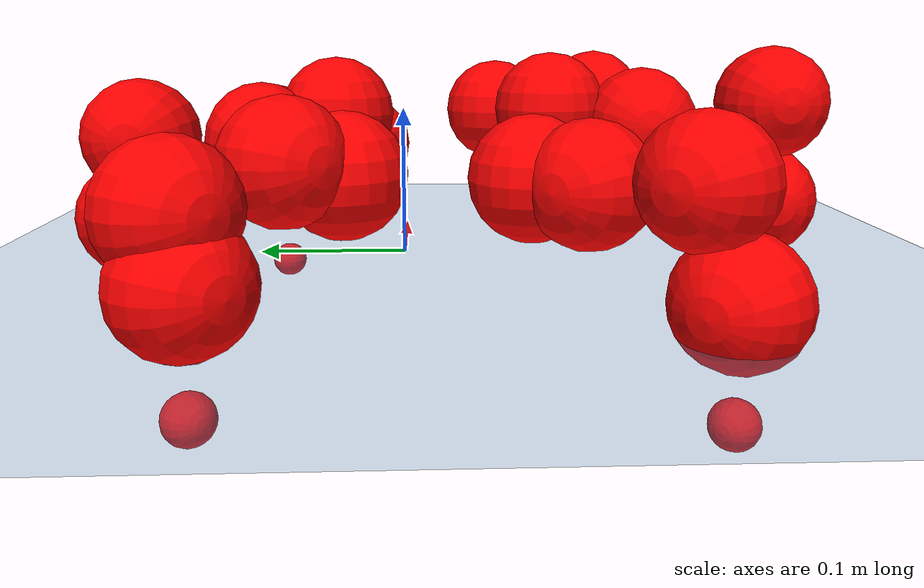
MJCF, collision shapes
<mujoco model="Golem">
  <compiler angle="radian" assetdir="assets" balanceinertia="true" inertiafromgeom="false"/>

  <option timestep="0.005" density="1.2" viscosity="2e-05"/>

  <size nkey="1"/>

  <visual>
    <quality shadowsize="8192"/>
    <map shadowclip="0.5"/>
  </visual>

  <default>
    <default class="/">
      <joint armature="0.01" damping="0.01" frictionloss="0.01"/>
      <geom contype="0" conaffinity="0" group="1" solref="-1000 -80"/>
      <site size="0.01 0.005 0.005" group="5"/>
      <general forcelimited="true" biastype="affine" gainprm="25" biasprm="0 -25 -0.5"/>
      <default class="visual">
        <geom type="mesh" group="2"/>
      </default>
      <default class="collision">
        <geom group="3"/>
      </default>
      <default class="foot">
        <geom size="0.01 0 0" condim="6" group="4" priority="1" solimp="0.015 1 0.01"/>
      </default>
      <default class="reward_collision_sphere">
        <geom group="5" rgba="1 0 0 1"/>
      </default>
    </default>
  </default>

  <asset>
    <texture type="skybox" colorspace="auto" name="//unnamed_texture_0" builtin="gradient" rgb1="0.95 0.95 0.95" rgb2="0.95 0.95 0.95" width="100" height="600"/>
    <texture type="2d" colorspace="auto" name="texplane" builtin="checker" rgb1="0.345 0.575 0.748" rgb2="0.345 0.575 0.748" markrgb="1 1 1" width="512" height="512"/>
    <material name="MatPlane" class="/" texture="texplane" texuniform="true" texrepeat="2 2" specular="0.9"/>
    <mesh name="body" class="/" file="body.stl" scale="0.001 0.001 0.001"/>
    <mesh name="coxa" class="/" file="coxa.stl" scale="0.001 0.001 0.001"/>
    <mesh name="femur" class="/" file="femur.stl" scale="0.001 0.001 0.001"/>
    <mesh name="tibia" class="/" file="tibia.stl" scale="0.001 0.001 0.001"/>
    <mesh name="tarsus" class="/" file="tarsus.stl" scale="0.001 0.001 0.001"/>
  </asset>

  <worldbody>
    <geom name="floor" class="/" size="100 100 0.125" type="plane" group="0" material="MatPlane"/>
    <light name="toplight_shadow" class="/" pos="0 0 5" dir="0.0990148 0.0990148 -0.990148" type="directional" ambient="0.04 0.04 0.04" diffuse="0.55 0.55 0.55" specular="0.12 0.12 0.12"/>
    <light name="toplight_fill" class="/" pos="0 0 5" dir="0.0990148 0.0990148 -0.990148" type="directional" castshadow="false" ambient="0.04 0.04 0.04" diffuse="0.3 0.3 0.3" specular="0.08 0.08 0.08"/>
    <body name="trunk" pos="-0.0107439 -0.0173849 -0.0132509" quat="0.999998 -0.00206561 -4.91024e-05 -0.000231501">
      <inertial pos="0.011698 -0.0037598 0.0189793" quat="0.99958 -0.0208531 0.00219166 -0.0200134" mass="1.92196" diaginertia="0.000841702 0.00107156 0.075449"/>
      <joint name="//unnamed_joint_0" type="free"/>
      <geom name="//unnamed_geom_1" class="/" pos="0 0 0.0961767" quat="1 0 0 0" type="mesh" rgba="0.9 0.9 0.9 1" mesh="body"/>
      <site name="imu" class="/" pos="0.112855 0.0694381 0.182099" size="0.00932975"/>
      <camera name="track" class="/" pos="0 -1.35517 0" quat="0.707107 0.707107 0 0" mode="trackcom"/>
      <camera name="ego_camera" class="/" pos="0.0804153 0 0.150276" quat="-0.5 -0.5 0.5 0.5"/>
      <body name="coxa_RR" pos="-0.115645 -0.07238 0.0822063" quat="0.388204 0.00482687 -0.00316873 -0.921555">
        <inertial pos="0.00420637 0.0187079 -0.0182405" quat="0.998083 -0.0467756 0.023917 -0.032706" mass="0.136827" diaginertia="0.000994791 0.00169918 0.0767405"/>
        <joint name="coxa_joint_RR" class="/" pos="0 0 0" axis="0.0102114 -0.0249294 -0.999637" range="-3.44338 3.10159" armature="0.00820124" damping="0" frictionloss="0.012642"/>
        <geom name="//unnamed_geom_2" class="/" type="mesh" rgba="0.2 0.2 0.2 1" mesh="coxa"/>
        <geom name="//unnamed_geom_3" class="reward_collision_sphere" size="0.037319" pos="-0.0185574 0 0"/>
        <body name="femur_RR" pos="0.0182389 0.00491625 -0.000291341" quat="0.502524 -0.497381 0.494667 0.505357">
          <inertial pos="0.0153077 0.00237509 0.00854556" quat="0.999986 -0.00214697 0.00127421 0.00464074" mass="0.154007" diaginertia="0.000855877 0.00133035 0.0717853"/>
          <joint name="femur_joint_RR" class="/" pos="0 0 0" axis="0.000813087 -0.023901 -0.999714" range="-2.85917 2.87933" armature="0.0168353" damping="0" frictionloss="0.0100652"/>
          <geom name="//unnamed_geom_4" class="/" type="mesh" rgba="0.9 0.9 0.9 1" mesh="femur"/>
          <geom name="//unnamed_geom_5" class="reward_collision_sphere" size="0.037319"/>
          <body name="tibia_RR" pos="-0.0102579 -0.0721118 -0.00302213" quat="1.53063e-05 1 -0.000187565 0.00030279">
            <inertial pos="-0.0122962 0.00194766 -0.00842888" quat="0.997973 -0.0281809 -0.00736006 0.0565735" mass="0.163424" diaginertia="0.000804026 0.00097195 0.0491536"/>
            <joint name="tibia_joint_RR" class="/" pos="0 0 0" axis="0.0632881 0.0381723 0.997265" stiffness="0.0572596" range="-2.90148 3.53805" armature="0.0133133" damping="0" frictionloss="0.0059364"/>
            <geom name="//unnamed_geom_6" class="/" type="mesh" rgba="0.2 0.2 0.2 1" mesh="tibia"/>
            <geom name="//unnamed_geom_7" class="reward_collision_sphere" size="0.037319"/>
            <body name="tarsus_RR" pos="0.0606403 0.0173067 -0.00586832" quat="0.999995 -0.00292893 -0.000102866 -0.00124112">
              <inertial pos="0.021535 -0.0198725 0.0162736" quat="0.455517 0.522406 0.487766 0.530737" mass="0.137648" diaginertia="0.000821491 0.000888164 0.05812"/>
              <joint name="tarsus_joint_RR" class="/" pos="0 0 0" axis="0.0392204 -0.049294 0.998014" stiffness="0.03465" range="-3.51017 3.07852" armature="0.00439679" damping="0.0666434" frictionloss="0.00355354"/>
              <geom name="//unnamed_geom_8" class="/" type="mesh" rgba="0.9 0.9 0.9 1" mesh="tarsus"/>
              <geom name="foot_1" class="foot" size="0.00545791" pos="0.0692809 0 0" quat="0 -0.707107 0 0.707107"/>
              <geom name="//unnamed_geom_10" class="reward_collision_sphere" size="0.037319"/>
              <geom name="//unnamed_geom_11" class="reward_collision_sphere" size="0.0139946" pos="0.0664973 0 0"/>
              <site name="foot_1" class="foot" pos="0.0692809 0 0" quat="0 -0.707107 0 0.707107" size="0.00932975"/>
            </body>
          </body>
        </body>
      </body>
      <body name="coxa_RM" pos="0.00580606 -0.101599 0.113773" quat="0.706878 0.000766893 0.000325044 -0.707335">
        <inertial pos="0.00683617 -0.0117991 -0.00968725" quat="0.999736 0.0203441 -0.00875525 0.00606059" mass="0.169316" diaginertia="0.000799159 0.00134383 0.0681525"/>
        <joint name="coxa_joint_RM" class="/" pos="0 0 0" axis="-0.0542139 0.0148906 -0.998418" stiffness="0.0894025" range="-2.97397 3.32535" armature="0.0102548" damping="0.0110321" frictionloss="0.0184257"/>
        <geom name="//unnamed_geom_12" class="/" type="mesh" rgba="0.2 0.2 0.2 1" mesh="coxa"/>
        <geom name="//unnamed_geom_13" class="reward_collision_sphere" size="0.037319" pos="-0.0185574 0 0"/>
        <body name="femur_RM" pos="0.0411606 -0.0136501 -0.00971796" quat="0.501251 -0.502178 0.499317 0.497239">
          <inertial pos="-0.00137623 0.0127315 -0.015295" quat="0.99906 -0.0330607 -0.027214 -0.00681924" mass="0.187859" diaginertia="0.00119061 0.00173364 0.0857499"/>
          <joint name="femur_joint_RM" class="/" pos="0 0 0" axis="-0.020161 -0.0381637 -0.999068" range="-3.31607 3.38722" armature="0.01263" damping="0.0791393" frictionloss="0.0115578"/>
          <geom name="//unnamed_geom_14" class="/" type="mesh" rgba="0.9 0.9 0.9 1" mesh="femur"/>
          <geom name="//unnamed_geom_15" class="reward_collision_sphere" size="0.037319"/>
          <body name="tibia_RM" pos="-0.0136339 -0.0860004 -0.00772805" quat="0.000607434 1 0.000675927 -0.000196331">
            <inertial pos="0.0187114 0.0177564 -0.0102136" quat="0.995527 0.0846801 -0.0382917 0.0170139" mass="0.159651" diaginertia="0.000988641 0.0014776 0.0973889"/>
            <joint name="tibia_joint_RM" class="/" pos="0 0 0" axis="0.00846914 -0.00348656 0.999958" range="-3.24297 2.9006" armature="0.00297883" damping="0" frictionloss="0.00322855"/>
            <geom name="//unnamed_geom_16" class="/" type="mesh" rgba="0.2 0.2 0.2 1" mesh="tibia"/>
            <geom name="//unnamed_geom_17" class="reward_collision_sphere" size="0.037319"/>
            <body name="tarsus_RM" pos="0.067197 -0.00171765 -0.0089132" quat="0.99999 -0.00222307 0.00215087 0.00316213">
              <inertial pos="0.0429471 -0.0055961 0.00789293" quat="0.512825 0.474034 0.50137 0.510813" mass="0.135113" diaginertia="0.000645084 0.00128977 0.0649714"/>
              <joint name="tarsus_joint_RM" class="/" pos="0 0 0" axis="-0.00131478 0.0435658 0.99905" stiffness="0.0573457" range="-3.12573 3.22998" armature="0.0183397" damping="0.00445959" frictionloss="0.00630698"/>
              <geom name="//unnamed_geom_18" class="/" type="mesh" rgba="0.9 0.9 0.9 1" mesh="tarsus"/>
              <geom name="foot_2" class="foot" size="0.0147885" pos="0.0692809 0 0" quat="0 -0.707107 0 0.707107"/>
              <geom name="//unnamed_geom_20" class="reward_collision_sphere" size="0.037319"/>
              <geom name="//unnamed_geom_21" class="reward_collision_sphere" size="0.0139946" pos="0.0664973 0 0"/>
              <site name="foot_2" class="foot" pos="0.0692809 0 0" quat="0 -0.707107 0 0.707107" size="0.00932975"/>
            </body>
          </body>
        </body>
      </body>
      <body name="coxa_RF" pos="0.106746 -0.0652049 0.105524" quat="0.924225 -0.00045871 0.000287564 -0.381848">
        <inertial pos="-0.0165234 -0.00120136 0.00353963" quat="0.999413 -0.0256931 -0.0123911 0.0189478" mass="0.164282" diaginertia="0.000674767 0.00123952 0.0898749"/>
        <joint name="coxa_joint_RF" class="/" pos="0 0 0" axis="-0.00465279 0.0381488 -0.999261" stiffness="0.0217958" range="-2.86981 3.27118" armature="0.0155342" damping="0" frictionloss="0.0121343"/>
        <geom name="//unnamed_geom_22" class="/" type="mesh" rgba="0.2 0.2 0.2 1" mesh="coxa"/>
        <geom name="//unnamed_geom_23" class="reward_collision_sphere" size="0.037319" pos="-0.0185574 0 0"/>
        <body name="femur_RF" pos="0.0188041 -0.00843086 -0.00707016" quat="0.500273 -0.499885 0.498059 0.501776">
          <inertial pos="0.00505903 0.00771182 0.0156553" quat="0.998912 -0.0136065 0.00150153 -0.0445731" mass="0.208066" diaginertia="0.00112212 0.00117185 0.0746735"/>
          <joint name="femur_joint_RF" class="/" pos="0 0 0" axis="-0.00123712 -0.00631096 -0.999979" stiffness="0.0697006" range="-3.4735 3.19989" armature="0.00313677" damping="0.0700567" frictionloss="0.00444683"/>
          <geom name="//unnamed_geom_24" class="/" type="mesh" rgba="0.9 0.9 0.9 1" mesh="femur"/>
          <geom name="//unnamed_geom_25" class="reward_collision_sphere" size="0.037319"/>
          <body name="tibia_RF" pos="-0.0127392 -0.0636395 -0.0127901" quat="0.000237269 1 9.58622e-05 3.67946e-05">
            <inertial pos="-0.01035 -0.0138722 -0.00437572" quat="0.998898 0.0312762 0.0316362 -0.014969" mass="0.151324" diaginertia="0.000657308 0.001598 0.0593261"/>
            <joint name="tibia_joint_RF" class="/" pos="0 0 0" axis="0.0202464 0.0317868 0.99929" range="-3.26468 3.30403" armature="0.00464368" damping="0.0465691" frictionloss="0.0166977"/>
            <geom name="//unnamed_geom_26" class="/" type="mesh" rgba="0.2 0.2 0.2 1" mesh="tibia"/>
            <geom name="//unnamed_geom_27" class="reward_collision_sphere" size="0.037319"/>
            <body name="tarsus_RF" pos="0.0462934 -0.0177409 0.0102234" quat="0.999959 -0.000982643 -0.00445347 0.00782779">
              <inertial pos="0.0400689 0.0184212 0.00842022" quat="0.428861 0.553327 0.475959 0.532325" mass="0.207211" diaginertia="0.000752248 0.00189048 0.0795302"/>
              <joint name="tarsus_joint_RF" class="/" pos="0 0 0" axis="0.0739396 0.0117445 0.997194" stiffness="0.0690325" range="-3.50395 3.26589" armature="0.000767259" damping="0.0167491" frictionloss="0.0100951"/>
              <geom name="//unnamed_geom_28" class="/" type="mesh" rgba="0.9 0.9 0.9 1" mesh="tarsus"/>
              <geom name="foot_3" class="foot" size="0.0125471" pos="0.0692809 0 0" quat="0 -0.707107 0 0.707107"/>
              <geom name="//unnamed_geom_30" class="reward_collision_sphere" size="0.037319"/>
              <geom name="//unnamed_geom_31" class="reward_collision_sphere" size="0.0139946" pos="0.0664973 0 0"/>
              <site name="foot_3" class="foot" pos="0.0692809 0 0" quat="0 -0.707107 0 0.707107" size="0.00932975"/>
            </body>
          </body>
        </body>
      </body>
      <body name="coxa_LR" pos="-0.115429 0.062138 0.0848662" quat="0.385009 -0.00242383 0.0042808 0.9229">
        <inertial pos="0.0095377 0.0189087 -0.00929027" quat="0.996919 -0.00205706 -0.0560128 -0.0548777" mass="0.211774" diaginertia="0.0010159 0.00136478 0.0893315"/>
        <joint name="coxa_joint_LR" class="/" pos="0 0 0" axis="0.0424237 0.0418567 -0.998223" stiffness="0.0722595" range="-2.90674 2.77213" armature="0.0174666" damping="0" frictionloss="0.0126982"/>
        <geom name="//unnamed_geom_32" class="/" type="mesh" rgba="0.2 0.2 0.2 1" mesh="coxa"/>
        <geom name="//unnamed_geom_33" class="reward_collision_sphere" size="0.037319" pos="-0.0185574 0 0"/>
        <body name="femur_LR" pos="0.0173249 -0.00710327 0.0111626" quat="0.501672 -0.50399 0.494022 0.500262">
          <inertial pos="-0.00962153 -0.00309837 -0.0081832" quat="0.995837 0.0577647 0.024991 0.065941" mass="0.206482" diaginertia="0.000922369 0.00157735 0.0630243"/>
          <joint name="femur_joint_LR" class="/" pos="0 0 0" axis="-0.0577344 0.0191231 0.998149" stiffness="0.0805968" range="-3.52771 3.45351" armature="0.00387655" damping="0.0537787" frictionloss="0.0123754"/>
          <geom name="//unnamed_geom_34" class="/" type="mesh" rgba="0.9 0.9 0.9 1" mesh="femur"/>
          <geom name="//unnamed_geom_35" class="reward_collision_sphere" size="0.037319"/>
          <body name="tibia_LR" pos="0.0134978 -0.0792121 0.0138776" quat="0.00564004 0.99998 0.00269345 0.000632958">
            <inertial pos="0.00604414 0.0180686 -0.0138595" quat="0.997826 -0.053222 0.00807873 -0.0380241" mass="0.15347" diaginertia="0.000705829 0.00115495 0.0703298"/>
            <joint name="tibia_joint_LR" class="/" pos="0 0 0" axis="0.0173404 -0.0159515 -0.999722" range="-2.82366 2.88127" armature="0.0147789" damping="0.0904427" frictionloss="0.00302215"/>
            <geom name="//unnamed_geom_36" class="/" type="mesh" rgba="0.2 0.2 0.2 1" mesh="tibia"/>
            <geom name="//unnamed_geom_37" class="reward_collision_sphere" size="0.037319"/>
            <body name="tarsus_LR" pos="0.0362881 0.000884581 -0.0097031" quat="0.999965 -0.00249451 -0.000629328 0.00794532">
              <inertial pos="0.0380337 0.00710312 -0.000272893" quat="0.501923 0.553994 0.46543 0.473855" mass="0.150212" diaginertia="0.000688534 0.00127323 0.0577183"/>
              <joint name="tarsus_joint_LR" class="/" pos="0 0 0" axis="-0.00441533 0.028856 -0.999574" stiffness="0.0816552" range="-2.80204 3.06529" armature="0.00994702" damping="0.0567352" frictionloss="0.0174031"/>
              <geom name="//unnamed_geom_38" class="/" type="mesh" rgba="0.9 0.9 0.9 1" mesh="tarsus"/>
              <geom name="foot_4" class="foot" size="0.00809716" pos="0.0692809 0 0" quat="0.707107 0 -0.707107 0"/>
              <geom name="//unnamed_geom_40" class="reward_collision_sphere" size="0.037319"/>
              <geom name="//unnamed_geom_41" class="reward_collision_sphere" size="0.0139946" pos="0.0664973 0 0"/>
              <site name="foot_4" class="foot" pos="0.0692809 0 0" quat="0.707107 0 -0.707107 0" size="0.00932975"/>
            </body>
          </body>
        </body>
      </body>
      <body name="coxa_LM" pos="-0.00243689 0.0792217 0.111919" quat="0.703352 0.00295112 -0.00184603 0.710834">
        <inertial pos="0.0165498 0.00947592 0.0152871" quat="0.999909 -0.000274223 -0.00820798 0.0106719" mass="0.137845" diaginertia="0.00100714 0.00162274 0.0551543"/>
        <joint name="coxa_joint_LM" class="/" pos="0 0 0" axis="0.0332167 -0.0149415 -0.999336" range="-3.12476 3.1167" armature="0.00156806" damping="0.0963112" frictionloss="0.0157744"/>
        <geom name="//unnamed_geom_42" class="/" type="mesh" rgba="0.2 0.2 0.2 1" mesh="coxa"/>
        <geom name="//unnamed_geom_43" class="reward_collision_sphere" size="0.037319" pos="-0.0185574 0 0"/>
        <body name="femur_LM" pos="0.0285399 0.0178117 -0.0156364" quat="0.500637 -0.500012 0.497523 0.501818">
          <inertial pos="-0.0155294 -0.0121695 -0.0173718" quat="0.99981 -0.0116271 0.00255741 0.0154601" mass="0.165183" diaginertia="0.000778217 0.00148147 0.087492"/>
          <joint name="femur_joint_LM" class="/" pos="0 0 0" axis="0.0355516 0.0346353 0.998767" stiffness="0.018781" range="-3.272 3.4474" armature="0.00336787" damping="0.0209367" frictionloss="0.00272209"/>
          <geom name="//unnamed_geom_44" class="/" type="mesh" rgba="0.9 0.9 0.9 1" mesh="femur"/>
          <geom name="//unnamed_geom_45" class="reward_collision_sphere" size="0.037319"/>
          <body name="tibia_LM" pos="-0.00280676 -0.0754279 0.00837739" quat="0.000792522 0.999997 -0.00230266 -0.00102415">
            <inertial pos="0.0131728 0.0185127 -0.0194404" quat="0.995222 0.0145779 0.021204 0.0941891" mass="0.166637" diaginertia="0.000846795 0.00143856 0.0896471"/>
            <joint name="tibia_joint_LM" class="/" pos="0 0 0" axis="-0.0744536 -0.0158199 -0.997099" stiffness="0.0959861" range="-3.05154 3.48598" armature="0.00403146" damping="0" frictionloss="0.0106349"/>
            <geom name="//unnamed_geom_46" class="/" type="mesh" rgba="0.2 0.2 0.2 1" mesh="tibia"/>
            <geom name="//unnamed_geom_47" class="reward_collision_sphere" size="0.037319"/>
            <body name="tarsus_LM" pos="0.048075 -0.000300201 -0.017182" quat="0.999987 0.000750422 0.00348218 0.00369954">
              <inertial pos="0.0488859 0.00911325 0.0163275" quat="0.428837 0.530533 0.548249 0.483794" mass="0.147904" diaginertia="0.00111739 0.00195283 0.103198"/>
              <joint name="tarsus_joint_LM" class="/" pos="0 0 0" axis="0.0456679 0.0705223 -0.996464" stiffness="0.0288976" range="-3.04234 3.47989" armature="0.0150961" damping="0" frictionloss="0.00984267"/>
              <geom name="//unnamed_geom_48" class="/" type="mesh" rgba="0.9 0.9 0.9 1" mesh="tarsus"/>
              <geom name="foot_5" class="foot" size="0.00994325" pos="0.0692809 0 0" quat="0.707107 0 -0.707107 0"/>
              <geom name="//unnamed_geom_50" class="reward_collision_sphere" size="0.037319"/>
              <geom name="//unnamed_geom_51" class="reward_collision_sphere" size="0.0139946" pos="0.0664973 0 0"/>
              <site name="foot_5" class="foot" pos="0.0692809 0 0" quat="0.707107 0 -0.707107 0" size="0.00932975"/>
            </body>
          </body>
        </body>
      </body>
      <body name="coxa_LF" pos="0.102425 0.0649002 0.0804132" quat="0.922621 -0.000394374 -0.0082822 0.385619">
        <inertial pos="-0.00918458 0.00859109 -0.0105031" quat="0.995244 0.0210631 -0.00508915 -0.0949752" mass="0.113589" diaginertia="0.000944264 0.00100806 0.0862742"/>
        <joint name="coxa_joint_LF" class="/" pos="0 0 0" axis="-0.00134195 0.0488643 -0.998805" stiffness="0.0184833" range="-3.12782 3.11992" armature="0.00764314" damping="0.0619635" frictionloss="0.00577174"/>
        <geom name="//unnamed_geom_52" class="/" type="mesh" rgba="0.2 0.2 0.2 1" mesh="coxa"/>
        <geom name="//unnamed_geom_53" class="reward_collision_sphere" size="0.037319" pos="-0.0185574 0 0"/>
        <body name="femur_LF" pos="0.0349543 -0.0105309 -0.0133806" quat="0.49992 -0.499888 0.500467 0.499725">
          <inertial pos="-0.0169587 0.00980816 -0.0183115" quat="0.998706 0.021959 -0.0104079 -0.0446838" mass="0.21675" diaginertia="0.00116071 0.00137299 0.0815119"/>
          <joint name="femur_joint_LF" class="/" pos="0 0 0" axis="-0.0665899 0.00882489 0.997741" range="-3.08295 2.74474" armature="0.00186836" damping="0.0651906" frictionloss="0.00700372"/>
          <geom name="//unnamed_geom_54" class="/" type="mesh" rgba="0.9 0.9 0.9 1" mesh="femur"/>
          <geom name="//unnamed_geom_55" class="reward_collision_sphere" size="0.037319"/>
          <body name="tibia_LF" pos="-0.0151474 -0.0606111 0.00746628" quat="-0.00364767 0.999975 -0.00205763 0.00562089">
            <inertial pos="0.00798378 -0.0086615 -0.000503064" quat="0.999804 -0.0149206 -0.00679965 0.0110547" mass="0.156571" diaginertia="0.000946399 0.00132705 0.0735079"/>
            <joint name="tibia_joint_LF" class="/" pos="0 0 0" axis="-0.0209424 -0.0763725 -0.996859" stiffness="0.0027219" range="-2.92588 2.85169" armature="0.017837" damping="0.0308971" frictionloss="0.00484302"/>
            <geom name="//unnamed_geom_56" class="/" type="mesh" rgba="0.2 0.2 0.2 1" mesh="tibia"/>
            <geom name="//unnamed_geom_57" class="reward_collision_sphere" size="0.037319"/>
            <body name="tarsus_LF" pos="0.0494524 -0.00433436 0.0091383" quat="0.999986 0.000960932 0.00119841 -0.00515209">
              <inertial pos="0.0529771 -0.0102637 -0.00126702" quat="0.500794 0.492312 0.509773 0.496957" mass="0.213585" diaginertia="0.00114472 0.00182051 0.0860303"/>
              <joint name="tarsus_joint_LF" class="/" pos="0 0 0" axis="0.00435889 -0.0590388 -0.998246" range="-2.78483 2.77544" armature="0.00896226" damping="0.0671082" frictionloss="0.0117726"/>
              <geom name="//unnamed_geom_58" class="/" type="mesh" rgba="0.9 0.9 0.9 1" mesh="tarsus"/>
              <geom name="foot_6" class="foot" size="0.0108467" pos="0.0692809 0 0" quat="0.707107 0 -0.707107 0"/>
              <geom name="//unnamed_geom_60" class="reward_collision_sphere" size="0.037319"/>
              <geom name="//unnamed_geom_61" class="reward_collision_sphere" size="0.0139946" pos="0.0664973 0 0"/>
              <site name="foot_6" class="foot" pos="0.0692809 0 0" quat="0.707107 0 -0.707107 0" size="0.00932975"/>
            </body>
          </body>
        </body>
      </body>
    </body>
  </worldbody>

  <contact>
    <pair class="/" geom1="floor" geom2="foot_1" name="//unnamed_contact_0"/>
    <pair class="/" geom1="floor" geom2="foot_2" name="//unnamed_contact_1"/>
    <pair class="/" geom1="floor" geom2="foot_3" name="//unnamed_contact_2"/>
    <pair class="/" geom1="floor" geom2="foot_4" name="//unnamed_contact_3"/>
    <pair class="/" geom1="floor" geom2="foot_5" name="//unnamed_contact_4"/>
    <pair class="/" geom1="floor" geom2="foot_6" name="//unnamed_contact_5"/>
  </contact>

  <actuator>
    <general name="coxa_joint_RR" class="/" joint="coxa_joint_RR" forcerange="-3.97029 3.97029" gainprm="21.3734" biasprm="0 -21.3734 -0.509466"/>
    <general name="femur_joint_RR" class="/" joint="femur_joint_RR" forcerange="-9.92925 9.92925" gainprm="21.3734" biasprm="0 -21.3734 -0.509466"/>
    <general name="tibia_joint_RR" class="/" joint="tibia_joint_RR" forcerange="-11.5725 11.5725" gainprm="21.3734" biasprm="0 -21.3734 -0.509466"/>
    <general name="tarsus_joint_RR" class="/" joint="tarsus_joint_RR" forcerange="-10.3306 10.3306" gainprm="21.3734" biasprm="0 -21.3734 -0.509466"/>
    <general name="coxa_joint_RM" class="/" joint="coxa_joint_RM" forcerange="-6.98164 6.98164" gainprm="21.3734" biasprm="0 -21.3734 -0.509466"/>
    <general name="femur_joint_RM" class="/" joint="femur_joint_RM" forcerange="-5.53984 5.53984" gainprm="21.3734" biasprm="0 -21.3734 -0.509466"/>
    <general name="tibia_joint_RM" class="/" joint="tibia_joint_RM" forcerange="-11.8018 11.8018" gainprm="21.3734" biasprm="0 -21.3734 -0.509466"/>
    <general name="tarsus_joint_RM" class="/" joint="tarsus_joint_RM" forcerange="-9.22242 9.22242" gainprm="21.3734" biasprm="0 -21.3734 -0.509466"/>
    <general name="coxa_joint_RF" class="/" joint="coxa_joint_RF" forcerange="-8.12955 8.12955" gainprm="21.3734" biasprm="0 -21.3734 -0.509466"/>
    <general name="femur_joint_RF" class="/" joint="femur_joint_RF" forcerange="-1.81637 1.81637" gainprm="21.3734" biasprm="0 -21.3734 -0.509466"/>
    <general name="tibia_joint_RF" class="/" joint="tibia_joint_RF" forcerange="-3.69678 3.69678" gainprm="21.3734" biasprm="0 -21.3734 -0.509466"/>
    <general name="tarsus_joint_RF" class="/" joint="tarsus_joint_RF" forcerange="-1.84051 1.84051" gainprm="21.3734" biasprm="0 -21.3734 -0.509466"/>
    <general name="coxa_joint_LR" class="/" joint="coxa_joint_LR" forcerange="-10.9691 10.9691" gainprm="21.3734" biasprm="0 -21.3734 -0.509466"/>
    <general name="femur_joint_LR" class="/" joint="femur_joint_LR" forcerange="-4.11843 4.11843" gainprm="21.3734" biasprm="0 -21.3734 -0.509466"/>
    <general name="tibia_joint_LR" class="/" joint="tibia_joint_LR" forcerange="-3.44985 3.44985" gainprm="21.3734" biasprm="0 -21.3734 -0.509466"/>
    <general name="tarsus_joint_LR" class="/" joint="tarsus_joint_LR" forcerange="-7.65424 7.65424" gainprm="21.3734" biasprm="0 -21.3734 -0.509466"/>
    <general name="coxa_joint_LM" class="/" joint="coxa_joint_LM" forcerange="-3.77759 3.77759" gainprm="21.3734" biasprm="0 -21.3734 -0.509466"/>
    <general name="femur_joint_LM" class="/" joint="femur_joint_LM" forcerange="-7.2861 7.2861" gainprm="21.3734" biasprm="0 -21.3734 -0.509466"/>
    <general name="tibia_joint_LM" class="/" joint="tibia_joint_LM" forcerange="-11.4058 11.4058" gainprm="21.3734" biasprm="0 -21.3734 -0.509466"/>
    <general name="tarsus_joint_LM" class="/" joint="tarsus_joint_LM" forcerange="-10.5284 10.5284" gainprm="21.3734" biasprm="0 -21.3734 -0.509466"/>
    <general name="coxa_joint_LF" class="/" joint="coxa_joint_LF" forcerange="-4.20692 4.20692" gainprm="21.3734" biasprm="0 -21.3734 -0.509466"/>
    <general name="femur_joint_LF" class="/" joint="femur_joint_LF" forcerange="-11.0624 11.0624" gainprm="21.3734" biasprm="0 -21.3734 -0.509466"/>
    <general name="tibia_joint_LF" class="/" joint="tibia_joint_LF" forcerange="-5.78289 5.78289" gainprm="21.3734" biasprm="0 -21.3734 -0.509466"/>
    <general name="tarsus_joint_LF" class="/" joint="tarsus_joint_LF" forcerange="-7.04607 7.04607" gainprm="21.3734" biasprm="0 -21.3734 -0.509466"/>
  </actuator>

  <sensor>
    <gyro site="imu" name="imu_angular_velocity"/>
    <velocimeter site="imu" name="imu_linear_velocity"/>
    <framelinvel objtype="site" objname="foot_1" name="foot_1_global_linear_velocity"/>
    <framelinvel objtype="site" objname="foot_2" name="foot_2_global_linear_velocity"/>
    <framelinvel objtype="site" objname="foot_3" name="foot_3_global_linear_velocity"/>
    <framelinvel objtype="site" objname="foot_4" name="foot_4_global_linear_velocity"/>
    <framelinvel objtype="site" objname="foot_5" name="foot_5_global_linear_velocity"/>
    <framelinvel objtype="site" objname="foot_6" name="foot_6_global_linear_velocity"/>
  </sensor>

  <keyframe>
    <key name="home" qpos="0 0 0.1457 1 0 0 0 0 0 0 0 0 0 0 0 0 0 0 0 0 0 0 0 0 0 0 0 0 0 0 0"/>
  </keyframe>
</mujoco>
